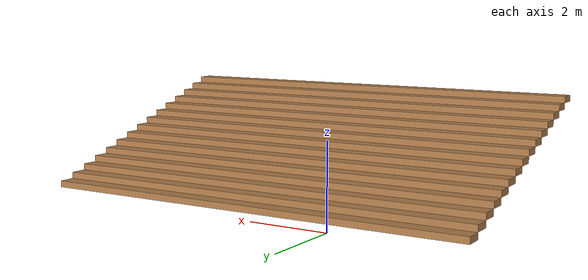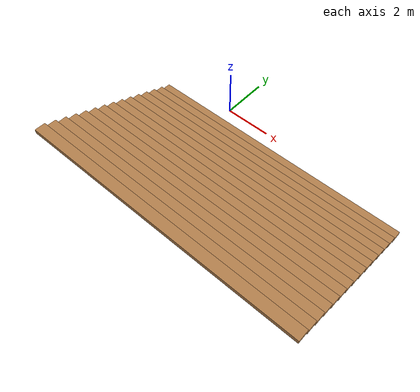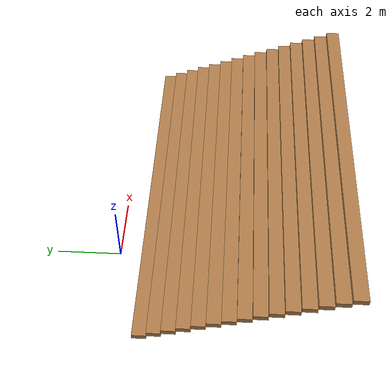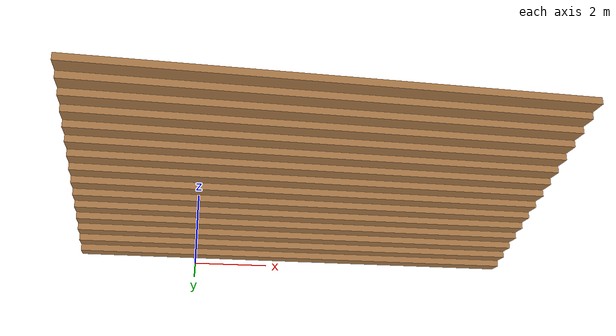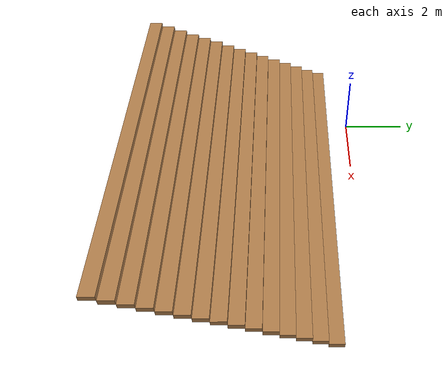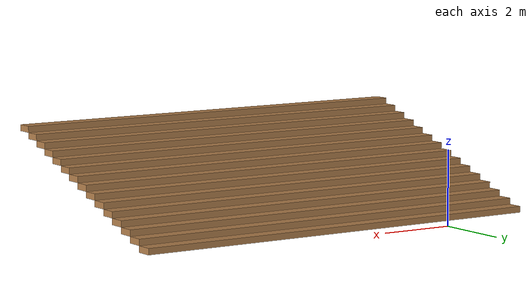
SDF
<?xml version='1.0'?>
<sdf version='1.6'>
  <model name='stair'>
    <pose frame=''>2.81647 -3.94733 0 0 -0 0</pose>
    <link name='Stairs_0'>
      <visual name='Stairs_0_Visual_0'>
        <pose frame=''>0 3.03946 0.083333 0 -0 0</pose>
        <geometry>
          <box>
            <size>11.5842 0.434209 0.166667</size>
          </box>
        </geometry>
        <material>
          <script>
            <uri>file://media/materials/scripts/gazebo.material</uri>
            <name>Gazebo/Wood</name>
          </script>
          <ambient>1 1 1 1</ambient>
        </material>
      </visual>
      <collision name='Stairs_0_Collision_0'>
        <geometry>
          <box>
            <size>11.5842 0.434209 0.166667</size>
          </box>
        </geometry>
        <pose frame=''>0 3.03946 0.083333 0 -0 0</pose>
      </collision>
      <visual name='Stairs_0_Visual_1'>
        <pose frame=''>0 2.60526 0.25 0 -0 0</pose>
        <geometry>
          <box>
            <size>11.5842 0.434209 0.166667</size>
          </box>
        </geometry>
        <material>
          <script>
            <uri>file://media/materials/scripts/gazebo.material</uri>
            <name>Gazebo/Wood</name>
          </script>
          <ambient>1 1 1 1</ambient>
        </material>
      </visual>
      <collision name='Stairs_0_Collision_1'>
        <geometry>
          <box>
            <size>11.5842 0.434209 0.166667</size>
          </box>
        </geometry>
        <pose frame=''>0 2.60526 0.25 0 -0 0</pose>
      </collision>
      <visual name='Stairs_0_Visual_2'>
        <pose frame=''>0 2.17105 0.416667 0 -0 0</pose>
        <geometry>
          <box>
            <size>11.5842 0.434209 0.166667</size>
          </box>
        </geometry>
        <material>
          <script>
            <uri>file://media/materials/scripts/gazebo.material</uri>
            <name>Gazebo/Wood</name>
          </script>
          <ambient>1 1 1 1</ambient>
        </material>
      </visual>
      <collision name='Stairs_0_Collision_2'>
        <geometry>
          <box>
            <size>11.5842 0.434209 0.166667</size>
          </box>
        </geometry>
        <pose frame=''>0 2.17105 0.416667 0 -0 0</pose>
      </collision>
      <visual name='Stairs_0_Visual_3'>
        <pose frame=''>0 1.73684 0.583333 0 -0 0</pose>
        <geometry>
          <box>
            <size>11.5842 0.434209 0.166667</size>
          </box>
        </geometry>
        <material>
          <script>
            <uri>file://media/materials/scripts/gazebo.material</uri>
            <name>Gazebo/Wood</name>
          </script>
          <ambient>1 1 1 1</ambient>
        </material>
      </visual>
      <collision name='Stairs_0_Collision_3'>
        <geometry>
          <box>
            <size>11.5842 0.434209 0.166667</size>
          </box>
        </geometry>
        <pose frame=''>0 1.73684 0.583333 0 -0 0</pose>
      </collision>
      <visual name='Stairs_0_Visual_4'>
        <pose frame=''>0 1.30263 0.75 0 -0 0</pose>
        <geometry>
          <box>
            <size>11.5842 0.434209 0.166667</size>
          </box>
        </geometry>
        <material>
          <script>
            <uri>file://media/materials/scripts/gazebo.material</uri>
            <name>Gazebo/Wood</name>
          </script>
          <ambient>1 1 1 1</ambient>
        </material>
      </visual>
      <collision name='Stairs_0_Collision_4'>
        <geometry>
          <box>
            <size>11.5842 0.434209 0.166667</size>
          </box>
        </geometry>
        <pose frame=''>0 1.30263 0.75 0 -0 0</pose>
      </collision>
      <visual name='Stairs_0_Visual_5'>
        <pose frame=''>0 0.868418 0.916667 0 -0 0</pose>
        <geometry>
          <box>
            <size>11.5842 0.434209 0.166667</size>
          </box>
        </geometry>
        <material>
          <script>
            <uri>file://media/materials/scripts/gazebo.material</uri>
            <name>Gazebo/Wood</name>
          </script>
          <ambient>1 1 1 1</ambient>
        </material>
      </visual>
      <collision name='Stairs_0_Collision_5'>
        <geometry>
          <box>
            <size>11.5842 0.434209 0.166667</size>
          </box>
        </geometry>
        <pose frame=''>0 0.868418 0.916667 0 -0 0</pose>
      </collision>
      <visual name='Stairs_0_Visual_6'>
        <pose frame=''>0 0.434209 1.08333 0 -0 0</pose>
        <geometry>
          <box>
            <size>11.5842 0.434209 0.166667</size>
          </box>
        </geometry>
        <material>
          <script>
            <uri>file://media/materials/scripts/gazebo.material</uri>
            <name>Gazebo/Wood</name>
          </script>
          <ambient>1 1 1 1</ambient>
        </material>
      </visual>
      <collision name='Stairs_0_Collision_6'>
        <geometry>
          <box>
            <size>11.5842 0.434209 0.166667</size>
          </box>
        </geometry>
        <pose frame=''>0 0.434209 1.08333 0 -0 0</pose>
      </collision>
      <visual name='Stairs_0_Visual_7'>
        <pose frame=''>0 -0 1.25 0 -0 0</pose>
        <geometry>
          <box>
            <size>11.5842 0.434209 0.166667</size>
          </box>
        </geometry>
        <material>
          <script>
            <uri>file://media/materials/scripts/gazebo.material</uri>
            <name>Gazebo/Wood</name>
          </script>
          <ambient>1 1 1 1</ambient>
        </material>
      </visual>
      <collision name='Stairs_0_Collision_7'>
        <geometry>
          <box>
            <size>11.5842 0.434209 0.166667</size>
          </box>
        </geometry>
        <pose frame=''>0 -0 1.25 0 -0 0</pose>
      </collision>
      <visual name='Stairs_0_Visual_8'>
        <pose frame=''>0 -0.434209 1.41667 0 -0 0</pose>
        <geometry>
          <box>
            <size>11.5842 0.434209 0.166667</size>
          </box>
        </geometry>
        <material>
          <script>
            <uri>file://media/materials/scripts/gazebo.material</uri>
            <name>Gazebo/Wood</name>
          </script>
          <ambient>1 1 1 1</ambient>
        </material>
      </visual>
      <collision name='Stairs_0_Collision_8'>
        <geometry>
          <box>
            <size>11.5842 0.434209 0.166667</size>
          </box>
        </geometry>
        <pose frame=''>0 -0.434209 1.41667 0 -0 0</pose>
      </collision>
      <visual name='Stairs_0_Visual_9'>
        <pose frame=''>0 -0.868418 1.58333 0 -0 0</pose>
        <geometry>
          <box>
            <size>11.5842 0.434209 0.166667</size>
          </box>
        </geometry>
        <material>
          <script>
            <uri>file://media/materials/scripts/gazebo.material</uri>
            <name>Gazebo/Wood</name>
          </script>
          <ambient>1 1 1 1</ambient>
        </material>
      </visual>
      <collision name='Stairs_0_Collision_9'>
        <geometry>
          <box>
            <size>11.5842 0.434209 0.166667</size>
          </box>
        </geometry>
        <pose frame=''>0 -0.868418 1.58333 0 -0 0</pose>
      </collision>
      <visual name='Stairs_0_Visual_10'>
        <pose frame=''>0 -1.30263 1.75 0 -0 0</pose>
        <geometry>
          <box>
            <size>11.5842 0.434209 0.166667</size>
          </box>
        </geometry>
        <material>
          <script>
            <uri>file://media/materials/scripts/gazebo.material</uri>
            <name>Gazebo/Wood</name>
          </script>
          <ambient>1 1 1 1</ambient>
        </material>
      </visual>
      <collision name='Stairs_0_Collision_10'>
        <geometry>
          <box>
            <size>11.5842 0.434209 0.166667</size>
          </box>
        </geometry>
        <pose frame=''>0 -1.30263 1.75 0 -0 0</pose>
      </collision>
      <visual name='Stairs_0_Visual_11'>
        <pose frame=''>0 -1.73684 1.91667 0 -0 0</pose>
        <geometry>
          <box>
            <size>11.5842 0.434209 0.166667</size>
          </box>
        </geometry>
        <material>
          <script>
            <uri>file://media/materials/scripts/gazebo.material</uri>
            <name>Gazebo/Wood</name>
          </script>
          <ambient>1 1 1 1</ambient>
        </material>
      </visual>
      <collision name='Stairs_0_Collision_11'>
        <geometry>
          <box>
            <size>11.5842 0.434209 0.166667</size>
          </box>
        </geometry>
        <pose frame=''>0 -1.73684 1.91667 0 -0 0</pose>
      </collision>
      <visual name='Stairs_0_Visual_12'>
        <pose frame=''>0 -2.17105 2.08333 0 -0 0</pose>
        <geometry>
          <box>
            <size>11.5842 0.434209 0.166667</size>
          </box>
        </geometry>
        <material>
          <script>
            <uri>file://media/materials/scripts/gazebo.material</uri>
            <name>Gazebo/Wood</name>
          </script>
          <ambient>1 1 1 1</ambient>
        </material>
      </visual>
      <collision name='Stairs_0_Collision_12'>
        <geometry>
          <box>
            <size>11.5842 0.434209 0.166667</size>
          </box>
        </geometry>
        <pose frame=''>0 -2.17105 2.08333 0 -0 0</pose>
      </collision>
      <visual name='Stairs_0_Visual_13'>
        <pose frame=''>0 -2.60526 2.25 0 -0 0</pose>
        <geometry>
          <box>
            <size>11.5842 0.434209 0.166667</size>
          </box>
        </geometry>
        <material>
          <script>
            <uri>file://media/materials/scripts/gazebo.material</uri>
            <name>Gazebo/Wood</name>
          </script>
          <ambient>1 1 1 1</ambient>
        </material>
      </visual>
      <collision name='Stairs_0_Collision_13'>
        <geometry>
          <box>
            <size>11.5842 0.434209 0.166667</size>
          </box>
        </geometry>
        <pose frame=''>0 -2.60526 2.25 0 -0 0</pose>
      </collision>
      <visual name='Stairs_0_Visual_14'>
        <pose frame=''>0 -3.03946 2.41667 0 -0 0</pose>
        <geometry>
          <box>
            <size>11.5842 0.434209 0.166667</size>
          </box>
        </geometry>
        <material>
          <script>
            <uri>file://media/materials/scripts/gazebo.material</uri>
            <name>Gazebo/Wood</name>
          </script>
          <ambient>1 1 1 1</ambient>
        </material>
      </visual>
      <collision name='Stairs_0_Collision_14'>
        <geometry>
          <box>
            <size>11.5842 0.434209 0.166667</size>
          </box>
        </geometry>
        <pose frame=''>0 -3.03946 2.41667 0 -0 0</pose>
      </collision>
    </link>
    <static>1</static>
  </model>
</sdf>
